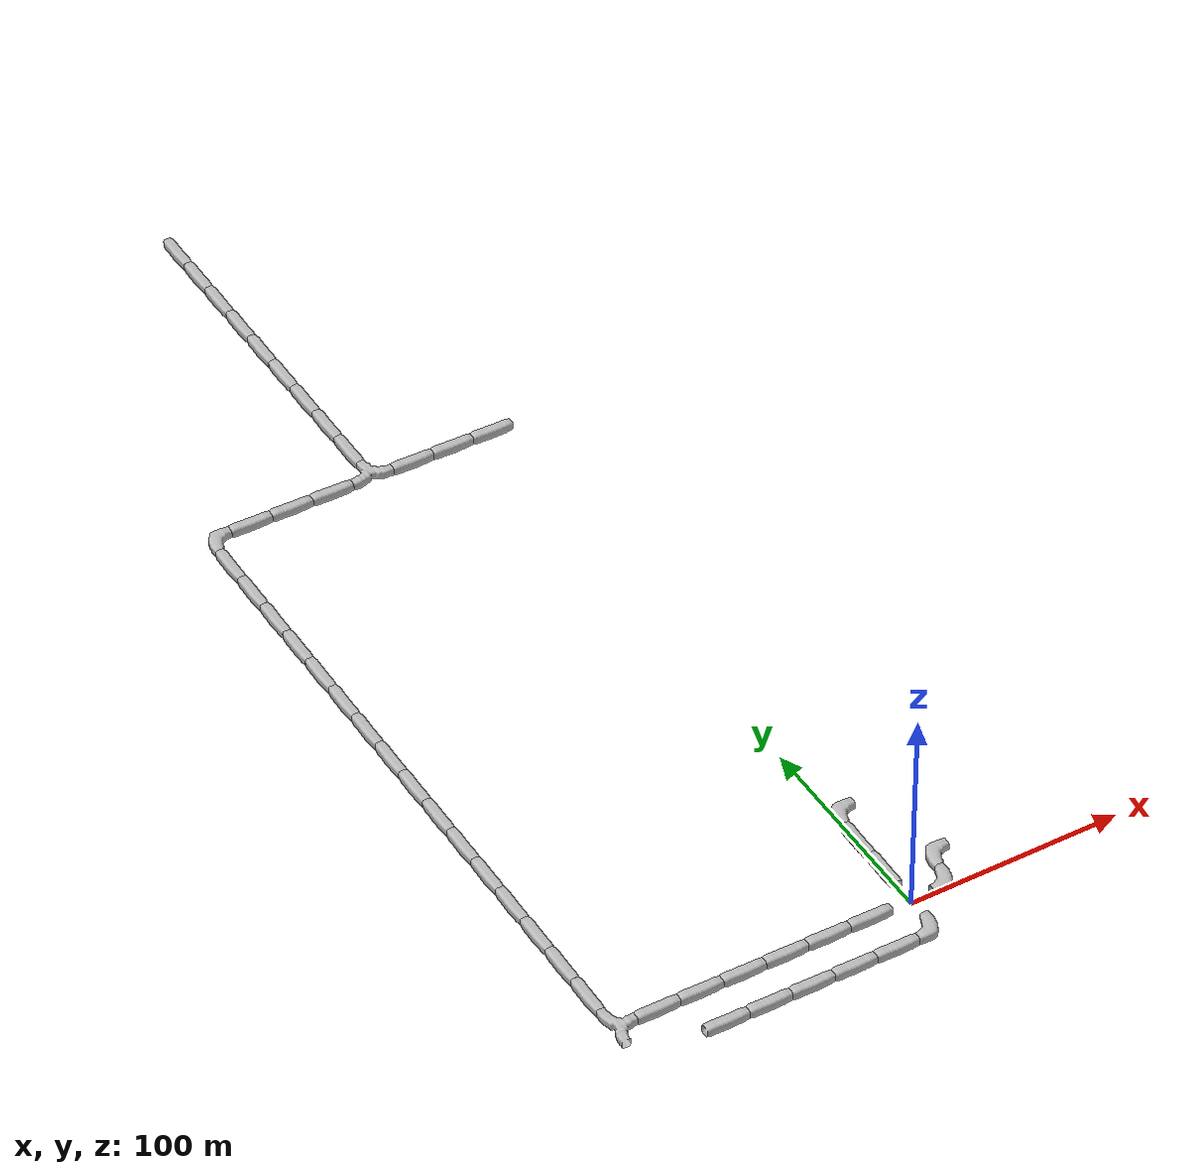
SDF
<sdf version="1.6">
 <world name="cave_4000_8">
  <include>
   <static>true</static>
   <name>cave_1_0</name>
   <pose>20 0 0 0 0 1.5707963267948966</pose>
   <uri>model://cave_L_20m</uri>
  </include>
  <include>
   <static>true</static>
   <name>cave_1_1</name>
   <pose>20 20 0 0 0 -1.5707963267948966</pose>
   <uri>model://cave_L_20m</uri>
  </include>
  <include>
   <static>true</static>
   <name>cave_0_-1</name>
   <pose>0 -20 0 0 0 1.5707963267948966</pose>
   <uri>model://cave_L_20m</uri>
  </include>
  <include>
   <static>true</static>
   <name>cave_-1_-1</name>
   <pose>-20 -20 0 0 0 1.5707963267948966</pose>
   <uri>model://cave_straight_20m</uri>
  </include>
  <include>
   <static>true</static>
   <name>cave_-2_-1</name>
   <pose>-40 -20 0 0 0 1.5707963267948966</pose>
   <uri>model://cave_straight_20m</uri>
  </include>
  <include>
   <static>true</static>
   <name>cave_-3_-1</name>
   <pose>-60 -20 0 0 0 1.5707963267948966</pose>
   <uri>model://cave_straight_20m</uri>
  </include>
  <include>
   <static>true</static>
   <name>cave_-4_-1</name>
   <pose>-80 -20 0 0 0 1.5707963267948966</pose>
   <uri>model://cave_straight_20m</uri>
  </include>
  <include>
   <static>true</static>
   <name>cave_-5_-1</name>
   <pose>-100 -20 0 0 0 1.5707963267948966</pose>
   <uri>model://cave_straight_20m</uri>
  </include>
  <include>
   <static>true</static>
   <name>cave_-1_0</name>
   <pose>-20 0 0 0 0 1.5707963267948966</pose>
   <uri>model://cave_straight_20m</uri>
  </include>
  <include>
   <static>true</static>
   <name>cave_-2_0</name>
   <pose>-40 0 0 0 0 1.5707963267948966</pose>
   <uri>model://cave_straight_20m</uri>
  </include>
  <include>
   <static>true</static>
   <name>cave_-3_0</name>
   <pose>-60 0 0 0 0 1.5707963267948966</pose>
   <uri>model://cave_straight_20m</uri>
  </include>
  <include>
   <static>true</static>
   <name>cave_-4_0</name>
   <pose>-80 0 0 0 0 1.5707963267948966</pose>
   <uri>model://cave_straight_20m</uri>
  </include>
  <include>
   <static>true</static>
   <name>cave_-5_0</name>
   <pose>-100 0 0 0 0 1.5707963267948966</pose>
   <uri>model://cave_straight_20m</uri>
  </include>
  <include>
   <static>true</static>
   <name>cave_-6_0</name>
   <pose>-120 0 0 0 0 1.5707963267948966</pose>
   <uri>model://cave_straight_20m</uri>
  </include>
  <include>
   <static>true</static>
   <name>cave_-7_0</name>
   <pose>-140 0 0 0 0 -1.5707963267948966</pose>
   <uri>model://cave_3way_20m</uri>
  </include>
  <include>
   <static>true</static>
   <name>cave_-7_1</name>
   <pose>-140 20 0 0 0 0.0</pose>
   <uri>model://cave_straight_20m</uri>
  </include>
  <include>
   <static>true</static>
   <name>cave_-7_2</name>
   <pose>-140 40 0 0 0 0.0</pose>
   <uri>model://cave_straight_20m</uri>
  </include>
  <include>
   <static>true</static>
   <name>cave_-7_3</name>
   <pose>-140 60 0 0 0 0.0</pose>
   <uri>model://cave_straight_20m</uri>
  </include>
  <include>
   <static>true</static>
   <name>cave_-7_4</name>
   <pose>-140 80 0 0 0 0.0</pose>
   <uri>model://cave_straight_20m</uri>
  </include>
  <include>
   <static>true</static>
   <name>cave_-7_5</name>
   <pose>-140 100 0 0 0 0.0</pose>
   <uri>model://cave_straight_20m</uri>
  </include>
  <include>
   <static>true</static>
   <name>cave_-7_6</name>
   <pose>-140 120 0 0 0 0.0</pose>
   <uri>model://cave_straight_20m</uri>
  </include>
  <include>
   <static>true</static>
   <name>cave_-7_7</name>
   <pose>-140 140 0 0 0 0.0</pose>
   <uri>model://cave_straight_20m</uri>
  </include>
  <include>
   <static>true</static>
   <name>cave_-7_8</name>
   <pose>-140 160 0 0 0 0.0</pose>
   <uri>model://cave_straight_20m</uri>
  </include>
  <include>
   <static>true</static>
   <name>cave_-7_9</name>
   <pose>-140 180 0 0 0 0.0</pose>
   <uri>model://cave_straight_20m</uri>
  </include>
  <include>
   <static>true</static>
   <name>cave_-7_10</name>
   <pose>-140 200 0 0 0 0.0</pose>
   <uri>model://cave_straight_20m</uri>
  </include>
  <include>
   <static>true</static>
   <name>cave_-7_11</name>
   <pose>-140 220 0 0 0 0.0</pose>
   <uri>model://cave_straight_20m</uri>
  </include>
  <include>
   <static>true</static>
   <name>cave_-7_12</name>
   <pose>-140 240 0 0 0 0.0</pose>
   <uri>model://cave_straight_20m</uri>
  </include>
  <include>
   <static>true</static>
   <name>cave_-7_13</name>
   <pose>-140 260 0 0 0 0.0</pose>
   <uri>model://cave_straight_20m</uri>
  </include>
  <include>
   <static>true</static>
   <name>cave_-7_14</name>
   <pose>-140 280 0 0 0 0.0</pose>
   <uri>model://cave_straight_20m</uri>
  </include>
  <include>
   <static>true</static>
   <name>cave_-7_15</name>
   <pose>-140 300 0 0 0 0.0</pose>
   <uri>model://cave_straight_20m</uri>
  </include>
  <include>
   <static>true</static>
   <name>cave_-7_16</name>
   <pose>-140 320 0 0 0 0.0</pose>
   <uri>model://cave_straight_20m</uri>
  </include>
  <include>
   <static>true</static>
   <name>cave_-7_17</name>
   <pose>-140 340 0 0 0 -1.5707963267948966</pose>
   <uri>model://cave_L_20m</uri>
  </include>
  <include>
   <static>true</static>
   <name>cave_-6_17</name>
   <pose>-120 340 0 0 0 1.5707963267948966</pose>
   <uri>model://cave_straight_20m</uri>
  </include>
  <include>
   <static>true</static>
   <name>cave_-5_17</name>
   <pose>-100 340 0 0 0 1.5707963267948966</pose>
   <uri>model://cave_straight_20m</uri>
  </include>
  <include>
   <static>true</static>
   <name>cave_-4_17</name>
   <pose>-80 340 0 0 0 1.5707963267948966</pose>
   <uri>model://cave_straight_20m</uri>
  </include>
  <include>
   <static>true</static>
   <name>cave_-3_17</name>
   <pose>-60 340 0 0 0 0.0</pose>
   <uri>model://cave_3way_20m</uri>
  </include>
  <include>
   <static>true</static>
   <name>cave_-2_17</name>
   <pose>-40 340 0 0 0 1.5707963267948966</pose>
   <uri>model://cave_straight_20m</uri>
  </include>
  <include>
   <static>true</static>
   <name>cave_-1_17</name>
   <pose>-20 340 0 0 0 1.5707963267948966</pose>
   <uri>model://cave_straight_20m</uri>
  </include>
  <include>
   <static>true</static>
   <name>cave_0_17</name>
   <pose>0 340 0 0 0 1.5707963267948966</pose>
   <uri>model://cave_straight_20m</uri>
  </include>
  <include>
   <static>true</static>
   <name>cave_-3_18</name>
   <pose>-60 360 0 0 0 0.0</pose>
   <uri>model://cave_straight_20m</uri>
  </include>
  <include>
   <static>true</static>
   <name>cave_-3_19</name>
   <pose>-60 380 0 0 0 0.0</pose>
   <uri>model://cave_straight_20m</uri>
  </include>
  <include>
   <static>true</static>
   <name>cave_-3_20</name>
   <pose>-60 400 0 0 0 0.0</pose>
   <uri>model://cave_straight_20m</uri>
  </include>
  <include>
   <static>true</static>
   <name>cave_-3_21</name>
   <pose>-60 420 0 0 0 0.0</pose>
   <uri>model://cave_straight_20m</uri>
  </include>
  <include>
   <static>true</static>
   <name>cave_-3_22</name>
   <pose>-60 440 0 0 0 0.0</pose>
   <uri>model://cave_straight_20m</uri>
  </include>
  <include>
   <static>true</static>
   <name>cave_-3_23</name>
   <pose>-60 460 0 0 0 0.0</pose>
   <uri>model://cave_straight_20m</uri>
  </include>
  <include>
   <static>true</static>
   <name>cave_-3_24</name>
   <pose>-60 480 0 0 0 0.0</pose>
   <uri>model://cave_straight_20m</uri>
  </include>
  <include>
   <static>true</static>
   <name>cave_-3_25</name>
   <pose>-60 500 0 0 0 0.0</pose>
   <uri>model://cave_straight_20m</uri>
  </include>
  <include>
   <static>true</static>
   <name>cave_-3_26</name>
   <pose>-60 520 0 0 0 0.0</pose>
   <uri>model://cave_straight_20m</uri>
  </include>
  <include>
   <static>true</static>
   <name>cave_0_1</name>
   <pose>0 20 0 0 0 0.0</pose>
   <uri>model://cave_straight_20m</uri>
  </include>
  <include>
   <static>true</static>
   <name>cave_0_2</name>
   <pose>0 40 0 0 0 0.0</pose>
   <uri>model://cave_straight_20m</uri>
  </include>
  <include>
   <static>true</static>
   <name>cave_0_3</name>
   <pose>0 60 0 0 0 -1.5707963267948966</pose>
   <uri>model://cave_L_20m</uri>
  </include>
 </world>
</sdf>
